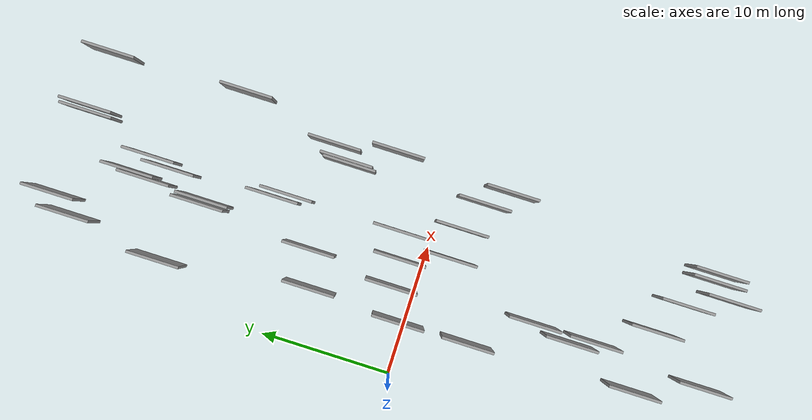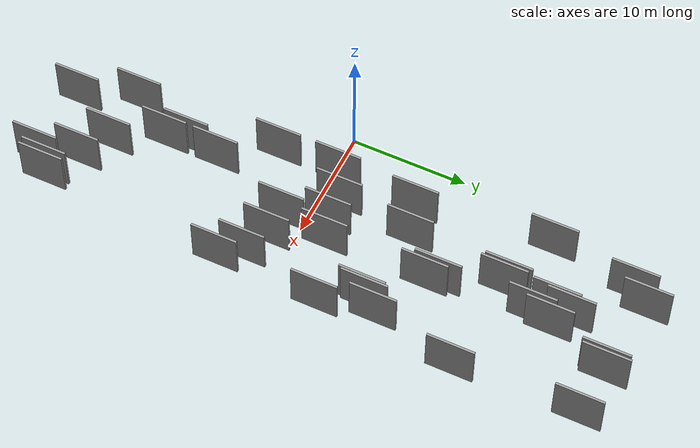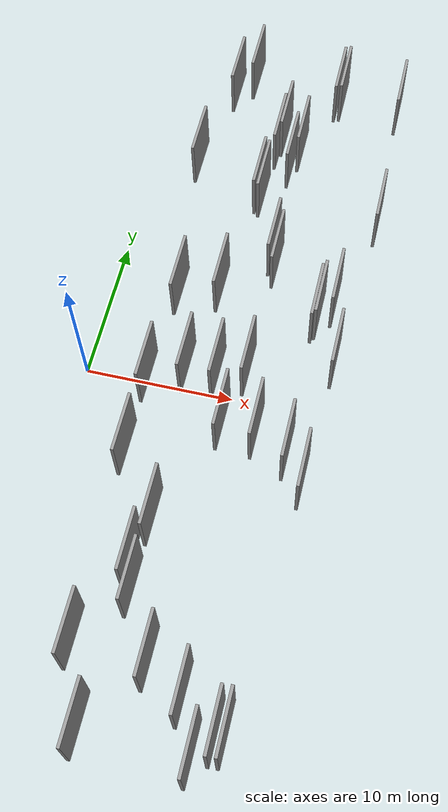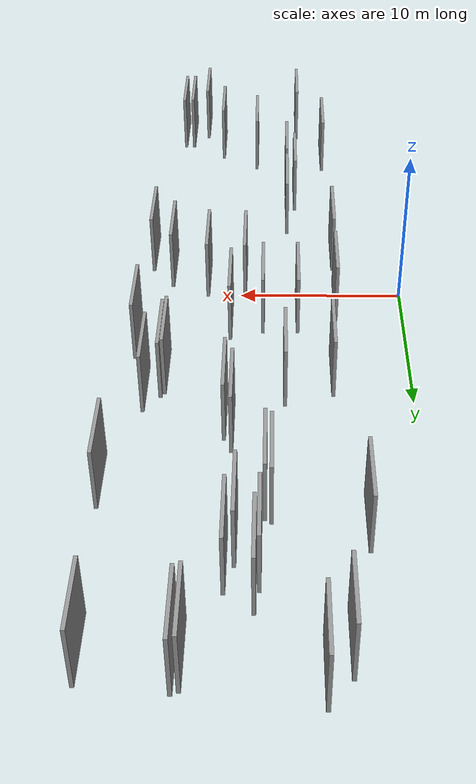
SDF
<sdf version="1.6">
 <world name="default">
  <scene>
   <sky><clouds><speed>12</speed></clouds></sky>
   <ambient>0.4 0.4 0.4 1</ambient>
   <background>0.7 0.7 0.7 1</background>
   <shadows>1</shadows>
  </scene>
  <gravity>0 0 -9.8066</gravity>
  <magnetic_field>6e-06 2.3e-05 -4.2e-05</magnetic_field>
  <physics default="0" name="default_physics" type="ode">
   <ode>
    <solver>
     <type>quick</type>
     <iters>10</iters>
     <sor>1.0</sor>
     <use_dynamic_moi_rescaling>0</use_dynamic_moi_rescaling>
    </solver>
    <constraints>
     <cfm>0</cfm>
     <erp>0.2</erp>
     <contact_max_correcting_vel>100</contact_max_correcting_vel>
     <contact_surface_layer>0.001</contact_surface_layer>
    </constraints>
   </ode>
   <max_step_size>0.004</max_step_size>
   <real_time_factor>1</real_time_factor>
   <real_time_update_rate>250</real_time_update_rate>
  </physics>
  <light name="sun" type="directional">
   <pose>0 0 10 0 0 0</pose>
   <diffuse>0.8 0.8 0.8 1</diffuse>
   <specular>0.2 0.2 0.2 1</specular>
   <attenuation>
    <range>1000</range>
    <constant>0.9</constant>
    <linear>0.01</linear>
    <quadratic>0.001</quadratic>
   </attenuation>
   <direction>-0.5 0.1 -0.9</direction>
  </light>
  <model name="grey_wall_1">
   <static>1</static>
   <pose>16.7061 26.6376 0.0 0.000000 0.000000 1.570796</pose>
   <link name="link">
    <pose>0 0 2.00 0 0 0</pose>
    <collision name="collision"><geometry><box><size>4.00 0.2 4.00</size></box></geometry></collision>
    <visual name="visual">
     <cast_shadows>0</cast_shadows>
     <geometry><box><size>4.00 0.2 4.00</size></box></geometry>
     <material>
      <script>
       <uri>model://grey_wall/materials/scripts</uri>
       <uri>model://grey_wall/materials/textures</uri>
       <name>vrc/grey_wall</name>
      </script>
     </material>
    </visual>
   </link>
  </model>
  <model name="grey_wall_2">
   <static>1</static>
   <pose>7.0532 -9.0477 0.0 0.000000 0.000000 1.570796</pose>
   <link name="link">
    <pose>0 0 2.00 0 0 0</pose>
    <collision name="collision"><geometry><box><size>4.00 0.2 4.00</size></box></geometry></collision>
    <visual name="visual">
     <cast_shadows>0</cast_shadows>
     <geometry><box><size>4.00 0.2 4.00</size></box></geometry>
     <material>
      <script>
       <uri>model://grey_wall/materials/scripts</uri>
       <uri>model://grey_wall/materials/textures</uri>
       <name>vrc/grey_wall</name>
      </script>
     </material>
    </visual>
   </link>
  </model>
  <model name="grey_wall_3">
   <static>1</static>
   <pose>16.9502 16.1823 0.0 0.000000 0.000000 1.570796</pose>
   <link name="link">
    <pose>0 0 2.00 0 0 0</pose>
    <collision name="collision"><geometry><box><size>4.00 0.2 4.00</size></box></geometry></collision>
    <visual name="visual">
     <cast_shadows>0</cast_shadows>
     <geometry><box><size>4.00 0.2 4.00</size></box></geometry>
     <material>
      <script>
       <uri>model://grey_wall/materials/scripts</uri>
       <uri>model://grey_wall/materials/textures</uri>
       <name>vrc/grey_wall</name>
      </script>
     </material>
    </visual>
   </link>
  </model>
  <model name="grey_wall_4">
   <static>1</static>
   <pose>14.1289 7.4127 0.0 0.000000 0.000000 1.570796</pose>
   <link name="link">
    <pose>0 0 2.00 0 0 0</pose>
    <collision name="collision"><geometry><box><size>4.00 0.2 4.00</size></box></geometry></collision>
    <visual name="visual">
     <cast_shadows>0</cast_shadows>
     <geometry><box><size>4.00 0.2 4.00</size></box></geometry>
     <material>
      <script>
       <uri>model://grey_wall/materials/scripts</uri>
       <uri>model://grey_wall/materials/textures</uri>
       <name>vrc/grey_wall</name>
      </script>
     </material>
    </visual>
   </link>
  </model>
  <model name="grey_wall_5">
   <static>1</static>
   <pose>14.3603 -2.9068 0.0 0.000000 0.000000 1.570796</pose>
   <link name="link">
    <pose>0 0 2.00 0 0 0</pose>
    <collision name="collision"><geometry><box><size>4.00 0.2 4.00</size></box></geometry></collision>
    <visual name="visual">
     <cast_shadows>0</cast_shadows>
     <geometry><box><size>4.00 0.2 4.00</size></box></geometry>
     <material>
      <script>
       <uri>model://grey_wall/materials/scripts</uri>
       <uri>model://grey_wall/materials/textures</uri>
       <name>vrc/grey_wall</name>
      </script>
     </material>
    </visual>
   </link>
  </model>
  <model name="grey_wall_6">
   <static>1</static>
   <pose>14.6286 -20.9069 0.0 0.000000 0.000000 1.570796</pose>
   <link name="link">
    <pose>0 0 2.00 0 0 0</pose>
    <collision name="collision"><geometry><box><size>4.00 0.2 4.00</size></box></geometry></collision>
    <visual name="visual">
     <cast_shadows>0</cast_shadows>
     <geometry><box><size>4.00 0.2 4.00</size></box></geometry>
     <material>
      <script>
       <uri>model://grey_wall/materials/scripts</uri>
       <uri>model://grey_wall/materials/textures</uri>
       <name>vrc/grey_wall</name>
      </script>
     </material>
    </visual>
   </link>
  </model>
  <model name="grey_wall_7">
   <static>1</static>
   <pose>10.1858 12.0922 0.0 0.000000 0.000000 1.570796</pose>
   <link name="link">
    <pose>0 0 2.00 0 0 0</pose>
    <collision name="collision"><geometry><box><size>4.00 0.2 4.00</size></box></geometry></collision>
    <visual name="visual">
     <cast_shadows>0</cast_shadows>
     <geometry><box><size>4.00 0.2 4.00</size></box></geometry>
     <material>
      <script>
       <uri>model://grey_wall/materials/scripts</uri>
       <uri>model://grey_wall/materials/textures</uri>
       <name>vrc/grey_wall</name>
      </script>
     </material>
    </visual>
   </link>
  </model>
  <model name="grey_wall_8">
   <static>1</static>
   <pose>6.4740 1.7864 0.0 0.000000 0.000000 1.570796</pose>
   <link name="link">
    <pose>0 0 2.00 0 0 0</pose>
    <collision name="collision"><geometry><box><size>4.00 0.2 4.00</size></box></geometry></collision>
    <visual name="visual">
     <cast_shadows>0</cast_shadows>
     <geometry><box><size>4.00 0.2 4.00</size></box></geometry>
     <material>
      <script>
       <uri>model://grey_wall/materials/scripts</uri>
       <uri>model://grey_wall/materials/textures</uri>
       <name>vrc/grey_wall</name>
      </script>
     </material>
    </visual>
   </link>
  </model>
  <model name="grey_wall_9">
   <static>1</static>
   <pose>8.3509 16.8986 0.0 0.000000 0.000000 1.570796</pose>
   <link name="link">
    <pose>0 0 2.00 0 0 0</pose>
    <collision name="collision"><geometry><box><size>4.00 0.2 4.00</size></box></geometry></collision>
    <visual name="visual">
     <cast_shadows>0</cast_shadows>
     <geometry><box><size>4.00 0.2 4.00</size></box></geometry>
     <material>
      <script>
       <uri>model://grey_wall/materials/scripts</uri>
       <uri>model://grey_wall/materials/textures</uri>
       <name>vrc/grey_wall</name>
      </script>
     </material>
    </visual>
   </link>
  </model>
  <model name="grey_wall_10">
   <static>1</static>
   <pose>12.3921 27.0401 0.0 0.000000 0.000000 1.570796</pose>
   <link name="link">
    <pose>0 0 2.00 0 0 0</pose>
    <collision name="collision"><geometry><box><size>4.00 0.2 4.00</size></box></geometry></collision>
    <visual name="visual">
     <cast_shadows>0</cast_shadows>
     <geometry><box><size>4.00 0.2 4.00</size></box></geometry>
     <material>
      <script>
       <uri>model://grey_wall/materials/scripts</uri>
       <uri>model://grey_wall/materials/textures</uri>
       <name>vrc/grey_wall</name>
      </script>
     </material>
    </visual>
   </link>
  </model>
  <model name="grey_wall_11">
   <static>1</static>
   <pose>16.1155 4.2713 0.0 0.000000 0.000000 1.570796</pose>
   <link name="link">
    <pose>0 0 2.00 0 0 0</pose>
    <collision name="collision"><geometry><box><size>4.00 0.2 4.00</size></box></geometry></collision>
    <visual name="visual">
     <cast_shadows>0</cast_shadows>
     <geometry><box><size>4.00 0.2 4.00</size></box></geometry>
     <material>
      <script>
       <uri>model://grey_wall/materials/scripts</uri>
       <uri>model://grey_wall/materials/textures</uri>
       <name>vrc/grey_wall</name>
      </script>
     </material>
    </visual>
   </link>
  </model>
  <model name="grey_wall_12">
   <static>1</static>
   <pose>4.1226 -4.8258 0.0 0.000000 0.000000 1.570796</pose>
   <link name="link">
    <pose>0 0 2.00 0 0 0</pose>
    <collision name="collision"><geometry><box><size>4.00 0.2 4.00</size></box></geometry></collision>
    <visual name="visual">
     <cast_shadows>0</cast_shadows>
     <geometry><box><size>4.00 0.2 4.00</size></box></geometry>
     <material>
      <script>
       <uri>model://grey_wall/materials/scripts</uri>
       <uri>model://grey_wall/materials/textures</uri>
       <name>vrc/grey_wall</name>
      </script>
     </material>
    </visual>
   </link>
  </model>
  <model name="grey_wall_13">
   <static>1</static>
   <pose>5.5318 27.7553 0.0 0.000000 0.000000 1.570796</pose>
   <link name="link">
    <pose>0 0 2.00 0 0 0</pose>
    <collision name="collision"><geometry><box><size>4.00 0.2 4.00</size></box></geometry></collision>
    <visual name="visual">
     <cast_shadows>0</cast_shadows>
     <geometry><box><size>4.00 0.2 4.00</size></box></geometry>
     <material>
      <script>
       <uri>model://grey_wall/materials/scripts</uri>
       <uri>model://grey_wall/materials/textures</uri>
       <name>vrc/grey_wall</name>
      </script>
     </material>
    </visual>
   </link>
  </model>
  <model name="grey_wall_14">
   <static>1</static>
   <pose>10.2854 21.5758 0.0 0.000000 0.000000 1.570796</pose>
   <link name="link">
    <pose>0 0 2.00 0 0 0</pose>
    <collision name="collision"><geometry><box><size>4.00 0.2 4.00</size></box></geometry></collision>
    <visual name="visual">
     <cast_shadows>0</cast_shadows>
     <geometry><box><size>4.00 0.2 4.00</size></box></geometry>
     <material>
      <script>
       <uri>model://grey_wall/materials/scripts</uri>
       <uri>model://grey_wall/materials/textures</uri>
       <name>vrc/grey_wall</name>
      </script>
     </material>
    </visual>
   </link>
  </model>
  <model name="grey_wall_15">
   <static>1</static>
   <pose>12.0755 -1.8898 0.0 0.000000 0.000000 1.570796</pose>
   <link name="link">
    <pose>0 0 2.00 0 0 0</pose>
    <collision name="collision"><geometry><box><size>4.00 0.2 4.00</size></box></geometry></collision>
    <visual name="visual">
     <cast_shadows>0</cast_shadows>
     <geometry><box><size>4.00 0.2 4.00</size></box></geometry>
     <material>
      <script>
       <uri>model://grey_wall/materials/scripts</uri>
       <uri>model://grey_wall/materials/textures</uri>
       <name>vrc/grey_wall</name>
      </script>
     </material>
    </visual>
   </link>
  </model>
  <model name="grey_wall_16">
   <static>1</static>
   <pose>4.3339 26.1980 0.0 0.000000 0.000000 1.570796</pose>
   <link name="link">
    <pose>0 0 2.00 0 0 0</pose>
    <collision name="collision"><geometry><box><size>4.00 0.2 4.00</size></box></geometry></collision>
    <visual name="visual">
     <cast_shadows>0</cast_shadows>
     <geometry><box><size>4.00 0.2 4.00</size></box></geometry>
     <material>
      <script>
       <uri>model://grey_wall/materials/scripts</uri>
       <uri>model://grey_wall/materials/textures</uri>
       <name>vrc/grey_wall</name>
      </script>
     </material>
    </visual>
   </link>
  </model>
  <model name="grey_wall_17">
   <static>1</static>
   <pose>11.6816 -19.2638 0.0 0.000000 0.000000 1.570796</pose>
   <link name="link">
    <pose>0 0 2.00 0 0 0</pose>
    <collision name="collision"><geometry><box><size>4.00 0.2 4.00</size></box></geometry></collision>
    <visual name="visual">
     <cast_shadows>0</cast_shadows>
     <geometry><box><size>4.00 0.2 4.00</size></box></geometry>
     <material>
      <script>
       <uri>model://grey_wall/materials/scripts</uri>
       <uri>model://grey_wall/materials/textures</uri>
       <name>vrc/grey_wall</name>
      </script>
     </material>
    </visual>
   </link>
  </model>
  <model name="grey_wall_18">
   <static>1</static>
   <pose>8.5771 21.4203 0.0 0.000000 0.000000 1.570796</pose>
   <link name="link">
    <pose>0 0 2.00 0 0 0</pose>
    <collision name="collision"><geometry><box><size>4.00 0.2 4.00</size></box></geometry></collision>
    <visual name="visual">
     <cast_shadows>0</cast_shadows>
     <geometry><box><size>4.00 0.2 4.00</size></box></geometry>
     <material>
      <script>
       <uri>model://grey_wall/materials/scripts</uri>
       <uri>model://grey_wall/materials/textures</uri>
       <name>vrc/grey_wall</name>
      </script>
     </material>
    </visual>
   </link>
  </model>
  <model name="grey_wall_19">
   <static>1</static>
   <pose>10.5462 2.4459 0.0 0.000000 0.000000 1.570796</pose>
   <link name="link">
    <pose>0 0 2.00 0 0 0</pose>
    <collision name="collision"><geometry><box><size>4.00 0.2 4.00</size></box></geometry></collision>
    <visual name="visual">
     <cast_shadows>0</cast_shadows>
     <geometry><box><size>4.00 0.2 4.00</size></box></geometry>
     <material>
      <script>
       <uri>model://grey_wall/materials/scripts</uri>
       <uri>model://grey_wall/materials/textures</uri>
       <name>vrc/grey_wall</name>
      </script>
     </material>
    </visual>
   </link>
  </model>
  <model name="grey_wall_20">
   <static>1</static>
   <pose>9.1943 -17.7103 0.0 0.000000 0.000000 1.570796</pose>
   <link name="link">
    <pose>0 0 2.00 0 0 0</pose>
    <collision name="collision"><geometry><box><size>4.00 0.2 4.00</size></box></geometry></collision>
    <visual name="visual">
     <cast_shadows>0</cast_shadows>
     <geometry><box><size>4.00 0.2 4.00</size></box></geometry>
     <material>
      <script>
       <uri>model://grey_wall/materials/scripts</uri>
       <uri>model://grey_wall/materials/textures</uri>
       <name>vrc/grey_wall</name>
      </script>
     </material>
    </visual>
   </link>
  </model>
  <model name="grey_wall_21">
   <static>1</static>
   <pose>6.4892 -12.0338 0.0 0.000000 0.000000 1.570796</pose>
   <link name="link">
    <pose>0 0 2.00 0 0 0</pose>
    <collision name="collision"><geometry><box><size>4.00 0.2 4.00</size></box></geometry></collision>
    <visual name="visual">
     <cast_shadows>0</cast_shadows>
     <geometry><box><size>4.00 0.2 4.00</size></box></geometry>
     <material>
      <script>
       <uri>model://grey_wall/materials/scripts</uri>
       <uri>model://grey_wall/materials/textures</uri>
       <name>vrc/grey_wall</name>
      </script>
     </material>
    </visual>
   </link>
  </model>
  <model name="grey_wall_22">
   <static>1</static>
   <pose>8.8120 22.7181 0.0 0.000000 0.000000 1.570796</pose>
   <link name="link">
    <pose>0 0 2.00 0 0 0</pose>
    <collision name="collision"><geometry><box><size>4.00 0.2 4.00</size></box></geometry></collision>
    <visual name="visual">
     <cast_shadows>0</cast_shadows>
     <geometry><box><size>4.00 0.2 4.00</size></box></geometry>
     <material>
      <script>
       <uri>model://grey_wall/materials/scripts</uri>
       <uri>model://grey_wall/materials/textures</uri>
       <name>vrc/grey_wall</name>
      </script>
     </material>
    </visual>
   </link>
  </model>
  <model name="grey_wall_23">
   <static>1</static>
   <pose>7.2720 8.3871 0.0 0.000000 0.000000 1.570796</pose>
   <link name="link">
    <pose>0 0 2.00 0 0 0</pose>
    <collision name="collision"><geometry><box><size>4.00 0.2 4.00</size></box></geometry></collision>
    <visual name="visual">
     <cast_shadows>0</cast_shadows>
     <geometry><box><size>4.00 0.2 4.00</size></box></geometry>
     <material>
      <script>
       <uri>model://grey_wall/materials/scripts</uri>
       <uri>model://grey_wall/materials/textures</uri>
       <name>vrc/grey_wall</name>
      </script>
     </material>
    </visual>
   </link>
  </model>
  <model name="grey_wall_24">
   <static>1</static>
   <pose>7.0429 -13.7059 0.0 0.000000 0.000000 1.570796</pose>
   <link name="link">
    <pose>0 0 2.00 0 0 0</pose>
    <collision name="collision"><geometry><box><size>4.00 0.2 4.00</size></box></geometry></collision>
    <visual name="visual">
     <cast_shadows>0</cast_shadows>
     <geometry><box><size>4.00 0.2 4.00</size></box></geometry>
     <material>
      <script>
       <uri>model://grey_wall/materials/scripts</uri>
       <uri>model://grey_wall/materials/textures</uri>
       <name>vrc/grey_wall</name>
      </script>
     </material>
    </visual>
   </link>
  </model>
  <model name="grey_wall_25">
   <static>1</static>
   <pose>8.0146 17.1314 0.0 0.000000 0.000000 1.570796</pose>
   <link name="link">
    <pose>0 0 2.00 0 0 0</pose>
    <collision name="collision"><geometry><box><size>4.00 0.2 4.00</size></box></geometry></collision>
    <visual name="visual">
     <cast_shadows>0</cast_shadows>
     <geometry><box><size>4.00 0.2 4.00</size></box></geometry>
     <material>
      <script>
       <uri>model://grey_wall/materials/scripts</uri>
       <uri>model://grey_wall/materials/textures</uri>
       <name>vrc/grey_wall</name>
      </script>
     </material>
    </visual>
   </link>
  </model>
  <model name="grey_wall_26">
   <static>1</static>
   <pose>6.2360 -22.2910 0.0 0.000000 0.000000 1.570796</pose>
   <link name="link">
    <pose>0 0 2.00 0 0 0</pose>
    <collision name="collision"><geometry><box><size>4.00 0.2 4.00</size></box></geometry></collision>
    <visual name="visual">
     <cast_shadows>0</cast_shadows>
     <geometry><box><size>4.00 0.2 4.00</size></box></geometry>
     <material>
      <script>
       <uri>model://grey_wall/materials/scripts</uri>
       <uri>model://grey_wall/materials/textures</uri>
       <name>vrc/grey_wall</name>
      </script>
     </material>
    </visual>
   </link>
  </model>
  <model name="grey_wall_27">
   <static>1</static>
   <pose>12.0250 26.8878 0.0 0.000000 0.000000 1.570796</pose>
   <link name="link">
    <pose>0 0 2.00 0 0 0</pose>
    <collision name="collision"><geometry><box><size>4.00 0.2 4.00</size></box></geometry></collision>
    <visual name="visual">
     <cast_shadows>0</cast_shadows>
     <geometry><box><size>4.00 0.2 4.00</size></box></geometry>
     <material>
      <script>
       <uri>model://grey_wall/materials/scripts</uri>
       <uri>model://grey_wall/materials/textures</uri>
       <name>vrc/grey_wall</name>
      </script>
     </material>
    </visual>
   </link>
  </model>
  <model name="grey_wall_28">
   <static>1</static>
   <pose>4.4241 -17.4795 0.0 0.000000 0.000000 1.570796</pose>
   <link name="link">
    <pose>0 0 2.00 0 0 0</pose>
    <collision name="collision"><geometry><box><size>4.00 0.2 4.00</size></box></geometry></collision>
    <visual name="visual">
     <cast_shadows>0</cast_shadows>
     <geometry><box><size>4.00 0.2 4.00</size></box></geometry>
     <material>
      <script>
       <uri>model://grey_wall/materials/scripts</uri>
       <uri>model://grey_wall/materials/textures</uri>
       <name>vrc/grey_wall</name>
      </script>
     </material>
    </visual>
   </link>
  </model>
  <model name="grey_wall_29">
   <static>1</static>
   <pose>3.1314 18.9450 0.0 0.000000 0.000000 1.570796</pose>
   <link name="link">
    <pose>0 0 2.00 0 0 0</pose>
    <collision name="collision"><geometry><box><size>4.00 0.2 4.00</size></box></geometry></collision>
    <visual name="visual">
     <cast_shadows>0</cast_shadows>
     <geometry><box><size>4.00 0.2 4.00</size></box></geometry>
     <material>
      <script>
       <uri>model://grey_wall/materials/scripts</uri>
       <uri>model://grey_wall/materials/textures</uri>
       <name>vrc/grey_wall</name>
      </script>
     </material>
    </visual>
   </link>
  </model>
  <model name="grey_wall_30">
   <static>1</static>
   <pose>9.7388 -1.7623 0.0 0.000000 0.000000 1.570796</pose>
   <link name="link">
    <pose>0 0 2.00 0 0 0</pose>
    <collision name="collision"><geometry><box><size>4.00 0.2 4.00</size></box></geometry></collision>
    <visual name="visual">
     <cast_shadows>0</cast_shadows>
     <geometry><box><size>4.00 0.2 4.00</size></box></geometry>
     <material>
      <script>
       <uri>model://grey_wall/materials/scripts</uri>
       <uri>model://grey_wall/materials/textures</uri>
       <name>vrc/grey_wall</name>
      </script>
     </material>
    </visual>
   </link>
  </model>
  <model name="grey_wall_31">
   <static>1</static>
   <pose>15.7197 -4.6397 0.0 0.000000 0.000000 1.570796</pose>
   <link name="link">
    <pose>0 0 2.00 0 0 0</pose>
    <collision name="collision"><geometry><box><size>4.00 0.2 4.00</size></box></geometry></collision>
    <visual name="visual">
     <cast_shadows>0</cast_shadows>
     <geometry><box><size>4.00 0.2 4.00</size></box></geometry>
     <material>
      <script>
       <uri>model://grey_wall/materials/scripts</uri>
       <uri>model://grey_wall/materials/textures</uri>
       <name>vrc/grey_wall</name>
      </script>
     </material>
    </visual>
   </link>
  </model>
  <model name="grey_wall_32">
   <static>1</static>
   <pose>10.6179 11.1445 0.0 0.000000 0.000000 1.570796</pose>
   <link name="link">
    <pose>0 0 2.00 0 0 0</pose>
    <collision name="collision"><geometry><box><size>4.00 0.2 4.00</size></box></geometry></collision>
    <visual name="visual">
     <cast_shadows>0</cast_shadows>
     <geometry><box><size>4.00 0.2 4.00</size></box></geometry>
     <material>
      <script>
       <uri>model://grey_wall/materials/scripts</uri>
       <uri>model://grey_wall/materials/textures</uri>
       <name>vrc/grey_wall</name>
      </script>
     </material>
    </visual>
   </link>
  </model>
  <model name="grey_wall_33">
   <static>1</static>
   <pose>4.1067 0.5273 0.0 0.000000 0.000000 1.570796</pose>
   <link name="link">
    <pose>0 0 2.00 0 0 0</pose>
    <collision name="collision"><geometry><box><size>4.00 0.2 4.00</size></box></geometry></collision>
    <visual name="visual">
     <cast_shadows>0</cast_shadows>
     <geometry><box><size>4.00 0.2 4.00</size></box></geometry>
     <material>
      <script>
       <uri>model://grey_wall/materials/scripts</uri>
       <uri>model://grey_wall/materials/textures</uri>
       <name>vrc/grey_wall</name>
      </script>
     </material>
    </visual>
   </link>
  </model>
  <model name="grey_wall_34">
   <static>1</static>
   <pose>9.8166 19.9293 0.0 0.000000 0.000000 1.570796</pose>
   <link name="link">
    <pose>0 0 2.00 0 0 0</pose>
    <collision name="collision"><geometry><box><size>4.00 0.2 4.00</size></box></geometry></collision>
    <visual name="visual">
     <cast_shadows>0</cast_shadows>
     <geometry><box><size>4.00 0.2 4.00</size></box></geometry>
     <material>
      <script>
       <uri>model://grey_wall/materials/scripts</uri>
       <uri>model://grey_wall/materials/textures</uri>
       <name>vrc/grey_wall</name>
      </script>
     </material>
    </visual>
   </link>
  </model>
  <model name="grey_wall_35">
   <static>1</static>
   <pose>8.5864 1.8120 0.0 0.000000 0.000000 1.570796</pose>
   <link name="link">
    <pose>0 0 2.00 0 0 0</pose>
    <collision name="collision"><geometry><box><size>4.00 0.2 4.00</size></box></geometry></collision>
    <visual name="visual">
     <cast_shadows>0</cast_shadows>
     <geometry><box><size>4.00 0.2 4.00</size></box></geometry>
     <material>
      <script>
       <uri>model://grey_wall/materials/scripts</uri>
       <uri>model://grey_wall/materials/textures</uri>
       <name>vrc/grey_wall</name>
      </script>
     </material>
    </visual>
   </link>
  </model>
  <model name="grey_wall_36">
   <static>1</static>
   <pose>15.2530 8.9062 0.0 0.000000 0.000000 1.570796</pose>
   <link name="link">
    <pose>0 0 2.00 0 0 0</pose>
    <collision name="collision"><geometry><box><size>4.00 0.2 4.00</size></box></geometry></collision>
    <visual name="visual">
     <cast_shadows>0</cast_shadows>
     <geometry><box><size>4.00 0.2 4.00</size></box></geometry>
     <material>
      <script>
       <uri>model://grey_wall/materials/scripts</uri>
       <uri>model://grey_wall/materials/textures</uri>
       <name>vrc/grey_wall</name>
      </script>
     </material>
    </visual>
   </link>
  </model>
  <model name="grey_wall_37">
   <static>1</static>
   <pose>14.0268 -20.9426 0.0 0.000000 0.000000 1.570796</pose>
   <link name="link">
    <pose>0 0 2.00 0 0 0</pose>
    <collision name="collision"><geometry><box><size>4.00 0.2 4.00</size></box></geometry></collision>
    <visual name="visual">
     <cast_shadows>0</cast_shadows>
     <geometry><box><size>4.00 0.2 4.00</size></box></geometry>
     <material>
      <script>
       <uri>model://grey_wall/materials/scripts</uri>
       <uri>model://grey_wall/materials/textures</uri>
       <name>vrc/grey_wall</name>
      </script>
     </material>
    </visual>
   </link>
  </model>
  <model name="grey_wall_38">
   <static>1</static>
   <pose>4.5272 7.5360 0.0 0.000000 0.000000 1.570796</pose>
   <link name="link">
    <pose>0 0 2.00 0 0 0</pose>
    <collision name="collision"><geometry><box><size>4.00 0.2 4.00</size></box></geometry></collision>
    <visual name="visual">
     <cast_shadows>0</cast_shadows>
     <geometry><box><size>4.00 0.2 4.00</size></box></geometry>
     <material>
      <script>
       <uri>model://grey_wall/materials/scripts</uri>
       <uri>model://grey_wall/materials/textures</uri>
       <name>vrc/grey_wall</name>
      </script>
     </material>
    </visual>
   </link>
  </model>
  <model name="grey_wall_39">
   <static>1</static>
   <pose>12.9769 -22.3763 0.0 0.000000 0.000000 1.570796</pose>
   <link name="link">
    <pose>0 0 2.00 0 0 0</pose>
    <collision name="collision"><geometry><box><size>4.00 0.2 4.00</size></box></geometry></collision>
    <visual name="visual">
     <cast_shadows>0</cast_shadows>
     <geometry><box><size>4.00 0.2 4.00</size></box></geometry>
     <material>
      <script>
       <uri>model://grey_wall/materials/scripts</uri>
       <uri>model://grey_wall/materials/textures</uri>
       <name>vrc/grey_wall</name>
      </script>
     </material>
    </visual>
   </link>
  </model>
  <model name="grey_wall_40">
   <static>1</static>
   <pose>14.3393 7.7173 0.0 0.000000 0.000000 1.570796</pose>
   <link name="link">
    <pose>0 0 2.00 0 0 0</pose>
    <collision name="collision"><geometry><box><size>4.00 0.2 4.00</size></box></geometry></collision>
    <visual name="visual">
     <cast_shadows>0</cast_shadows>
     <geometry><box><size>4.00 0.2 4.00</size></box></geometry>
     <material>
      <script>
       <uri>model://grey_wall/materials/scripts</uri>
       <uri>model://grey_wall/materials/textures</uri>
       <name>vrc/grey_wall</name>
      </script>
     </material>
    </visual>
   </link>
  </model>
 </world>
</sdf>
